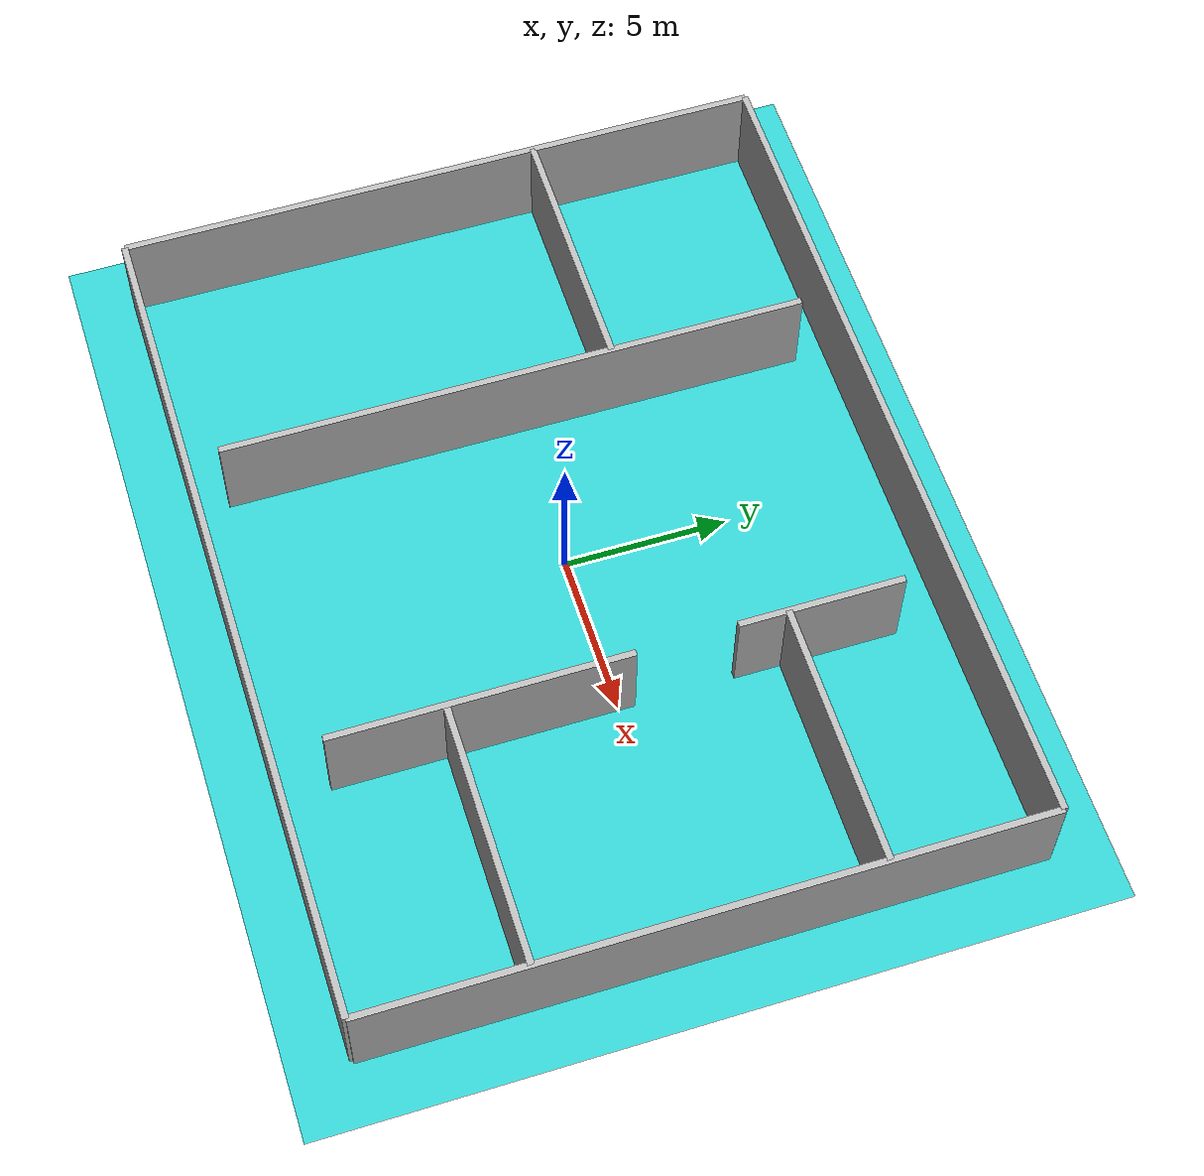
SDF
<?xml version="1.0" ?>
<sdf version="1.9">
  <world name="complex_maze_world">

    <physics name="default_physics" default="true" type="ode">
      <max_step_size>0.001</max_step_size>
      <real_time_factor>1</real_time_factor>
      <real_time_update_rate>1000</real_time_update_rate>
    </physics>
    <scene>
      <ambient>0.4 0.4 0.4 1</ambient>
      <background>0.7 0.7 0.7 1</background>
      <shadows>true</shadows>
    </scene>

    <light type="directional" name="sun">
      <cast_shadows>true</cast_shadows>
      <pose>0 0 10 0 0 0</pose>
      <diffuse>0.8 0.8 0.8 1</diffuse>
      <specular>0.2 0.2 0.2 1</specular>
      <attenuation>
        <range>1000</range>
        <constant>0.9</constant>
        <linear>0.01</linear>
        <quadratic>0.001</quadratic>
      </attenuation>
      <direction>-0.5 0.1 -0.9</direction>
    </light>

    <model name="ground_plane">
      <static>true</static>
      <link name="link">
        <collision name="collision">
          <geometry>
            <plane>
              <normal>0 0 1</normal>
              <size>100 100</size>
            </plane>
          </geometry>
        </collision>
        <visual name="visual">
          <geometry>
            <plane>
              <normal>0 0 1</normal>
              <size>100 100</size>
            </plane>
          </geometry>
          <material>
            <ambient>0.2 0.8 0.8 0.2</ambient>
            <diffuse>0.2 0.8 0.8 0.2</diffuse>
            <specular>0.2 0.8 0.8 0.2</specular>
          </material>
        </visual>
      </link>
    </model>

    <!-- Outer Walls -->
    <model name="outer_wall_north">
      <static>true</static>
      <pose>0 10 1.5 0 0 0</pose>
      <link name="link">
        <collision name="collision"><geometry><box><size>26 0.2 3</size></box></geometry></collision>
        <visual name="visual"><geometry><box><size>26 0.2 3</size></box></geometry></visual>
      </link>
    </model>
    <model name="outer_wall_south">
      <static>true</static>
      <pose>0 -10 1.5 0 0 0</pose>
      <link name="link">
        <collision name="collision"><geometry><box><size>26 0.2 3</size></box></geometry></collision>
        <visual name="visual"><geometry><box><size>26 0.2 3</size></box></geometry></visual>
      </link>
    </model>
    <model name="outer_wall_east">
      <static>true</static>
      <pose>13 0 1.5 0 0 1.57</pose>
      <link name="link">
        <collision name="collision"><geometry><box><size>20 0.2 3</size></box></geometry></collision>
        <visual name="visual"><geometry><box><size>20 0.2 3</size></box></geometry></visual>
      </link>
    </model>
    <model name="outer_wall_west">
      <static>true</static>
      <pose>-13 0 1.5 0 0 1.57</pose>
      <link name="link">
        <collision name="collision"><geometry><box><size>20 0.2 3</size></box></geometry></collision>
        <visual name="visual"><geometry><box><size>20 0.2 3</size></box></geometry></visual>
      </link>
    </model>

    <!-- Inner Walls - More complex layout -->
    <model name="inner_wall_1"><static>true</static><pose>-9 3 1.5 0 0 0</pose><link name="link"><collision name="collision"><geometry><box><size>8 0.2 3</size></box></geometry></collision><visual name="visual"><geometry><box><size>8 0.2 3</size></box></geometry></visual></link></model>
    <model name="inner_wall_2"><static>true</static><pose>5 -4 1.5 0 0 1.57</pose><link name="link"><collision name="collision"><geometry><box><size>9 0.2 3</size></box></geometry></collision><visual name="visual"><geometry><box><size>9 0.2 3</size></box></geometry></visual></link></model>
    <model name="inner_wall_3"><static>true</static><pose>-5 0 1.5 0 0 1.57</pose><link name="link"><collision name="collision"><geometry><box><size>7 0.2 3</size></box></geometry></collision><visual name="visual"><geometry><box><size>18 0.2 3</size></box></geometry></visual></link></model>
    <model name="inner_wall_4"><static>true</static><pose>9 -5 1.5 0 0 0</pose><link name="link"><collision name="collision"><geometry><box><size>8 0.2 3</size></box></geometry></collision><visual name="visual"><geometry><box><size>8 0.2 3</size></box></geometry></visual></link></model>
    <model name="inner_wall_5"><static>true</static><pose>5 6 1.5 0 0 1.57</pose><link name="link"><collision name="collision"><geometry><box><size>5 0.2 3</size></box></geometry></collision><visual name="visual"><geometry><box><size>5 0.2 3</size></box></geometry></visual></link></model>
    <model name="inner_wall_6"><static>true</static><pose>9 5 1.5 0 0 0</pose><link name="link"><collision name="collision"><geometry><box><size>8 0.2 3</size></box></geometry></collision><visual name="visual"><geometry><box><size>8 0.2 3</size></box></geometry></visual></link></model>

  </world>
</sdf>
